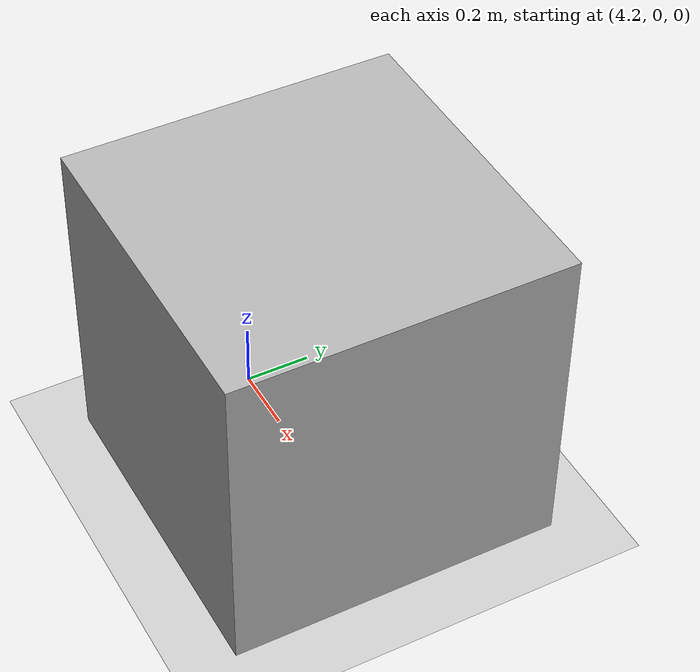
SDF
<?xml version="1.0" ?>

<sdf version="1.6">
  <world name="empty">

    <physics name="1ms" type="ignored">
      <max_step_size>0.001</max_step_size>
      <real_time_factor>1.0</real_time_factor>
    </physics>

    <plugin
      filename="ignition-gazebo-physics-system"
      name="gz::sim::systems::Physics">
    </plugin>

    <plugin
      filename="ignition-gazebo-user-commands-system"
      name="gz::sim::systems::UserCommands">
    </plugin>

    <plugin
      filename="ignition-gazebo-scene-broadcaster-system"
      name="gz::sim::systems::SceneBroadcaster">
    </plugin>

    <plugin
      filename="ignition-gazebo-contact-system"
      name="gz::sim::systems::Contact">
    </plugin>

    <light type="directional" name="sun">
      <cast_shadows>true</cast_shadows>
      <pose>0 0 10 0 0 0</pose>
      <diffuse>0.8 0.8 0.8 1</diffuse>
      <specular>0.2 0.2 0.2 1</specular>
      <attenuation>
        <range>1000</range>
        <constant>0.9</constant>
        <linear>0.01</linear>
        <quadratic>0.001</quadratic>
      </attenuation>
      <direction>-0.5 0.1 -0.9</direction>
    </light>

    <model name="ground_plane">
      <static>true</static>
      <link name="link">
        <collision name="collision">
          <geometry>
            <plane>
              <normal>0 0 1</normal>
              <size>100 100</size>
            </plane>
          </geometry>
        </collision>
        <visual name="visual">
          <geometry>
            <plane>
              <normal>0 0 1</normal>
              <size>100 100</size>
            </plane>
          </geometry>
          <material>
            <ambient>0.8 0.8 0.8 1</ambient>
            <diffuse>0.8 0.8 0.8 1</diffuse>
            <specular>0.8 0.8 0.8 1</specular>
          </material>
        </visual>
      </link>
    </model>

    <model name='box'>
      <pose>4.62626 0 0.5 0 -0 0</pose>
      <link name='box_link'>
        <inertial>
          <inertia>
            <ixx>0.16666</ixx>
            <ixy>0</ixy>
            <ixz>0</ixz>
            <iyy>0.16666</iyy>
            <iyz>0</iyz>
            <izz>0.16666</izz>
          </inertia>
          <mass>1</mass>
          <pose>0 0 0 0 -0 0</pose>
        </inertial>
        <collision name='box_collision'>
          <geometry>
            <box>
              <size>1 1 1</size>
            </box>
          </geometry>
          <surface>
            <friction>
              <ode/>
            </friction>
            <bounce/>
            <contact/>
          </surface>
        </collision>
        <visual name='box_visual'>
          <geometry>
            <box>
              <size>1 1 1</size>
            </box>
          </geometry>
          <material>
            <ambient>0.3 0.3 0.3 1</ambient>
            <diffuse>0.7 0.7 0.7 1</diffuse>
            <specular>1 1 1 1</specular>
          </material>
        </visual>
        <pose>0 0 0 0 -0 0</pose>
        <enable_wind>false</enable_wind>
      </link>
      <static>false</static>
      <self_collide>false</self_collide>
    </model>

  </world>
</sdf>
